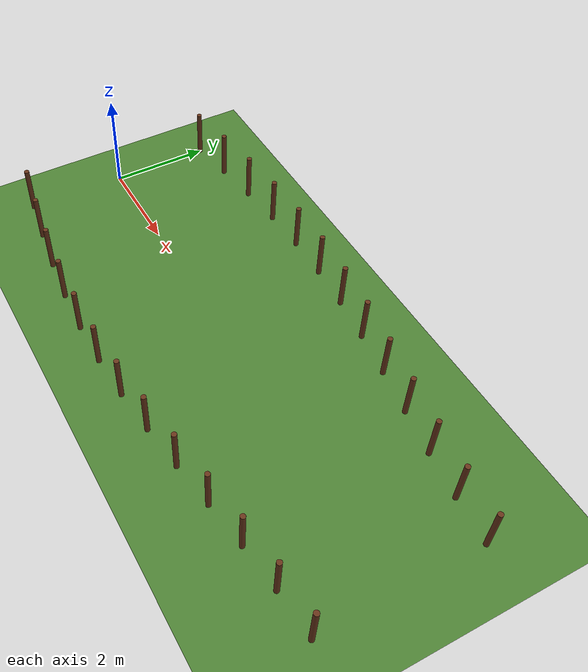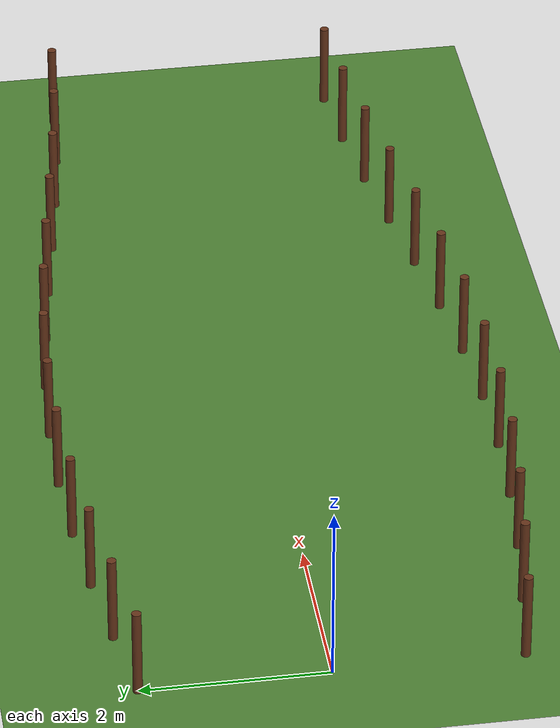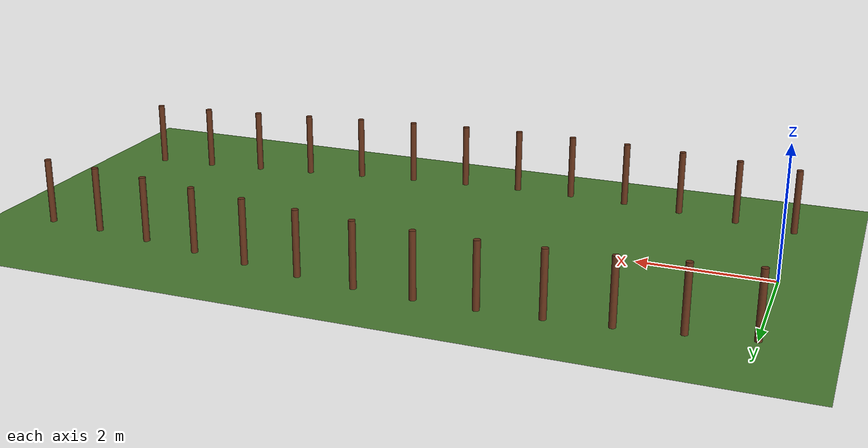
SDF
<sdf version="1.6">
 <world name="vineyard_variable">
  <model name="ground_plane">
   <static>true</static>
   <link name="link">
    <collision name="collision">
     <geometry><plane><normal>0 0 1</normal><size>100 100</size></plane></geometry>
     <surface><friction><ode><mu>100</mu><mu2>50</mu2></ode></friction></surface>
    </collision>
    <visual name="visual">
     <cast_shadows>false</cast_shadows>
     <geometry><plane><normal>0 0 1</normal><size>100 100</size></plane></geometry>
     <material><ambient>0.3 0.5 0.2 1</ambient><diffuse>0.3 0.5 0.2 1</diffuse></material>
    </visual>
   </link>
  </model>
  <model name="vine_0">
   <static>true</static>
   <pose>0.0 -2.0 0.5 0 0 0</pose>
   <link name="link">
    <collision name="collision">
     <geometry><cylinder><radius>0.05</radius><length>1.0</length></cylinder></geometry>
    </collision>
    <visual name="visual">
     <geometry><cylinder><radius>0.05</radius><length>1.0</length></cylinder></geometry>
     <material><ambient>0.4 0.2 0.1 1</ambient><diffuse>0.4 0.2 0.1 1</diffuse></material>
    </visual>
   </link>
  </model>
  <model name="vine_1">
   <static>true</static>
   <pose>0.9 -2.1409096933100358 0.5 0 0 0</pose>
   <link name="link">
    <collision name="collision">
     <geometry><cylinder><radius>0.05</radius><length>1.0</length></cylinder></geometry>
    </collision>
    <visual name="visual">
     <geometry><cylinder><radius>0.05</radius><length>1.0</length></cylinder></geometry>
     <material><ambient>0.4 0.2 0.1 1</ambient><diffuse>0.4 0.2 0.1 1</diffuse></material>
    </visual>
   </link>
  </model>
  <model name="vine_2">
   <static>true</static>
   <pose>1.8 -2.2637538687885894 0.5 0 0 0</pose>
   <link name="link">
    <collision name="collision">
     <geometry><cylinder><radius>0.05</radius><length>1.0</length></cylinder></geometry>
    </collision>
    <visual name="visual">
     <geometry><cylinder><radius>0.05</radius><length>1.0</length></cylinder></geometry>
     <material><ambient>0.4 0.2 0.1 1</ambient><diffuse>0.4 0.2 0.1 1</diffuse></material>
    </visual>
   </link>
  </model>
  <model name="vine_3">
   <static>true</static>
   <pose>2.7 -2.352783122753979 0.5 0 0 0</pose>
   <link name="link">
    <collision name="collision">
     <geometry><cylinder><radius>0.05</radius><length>1.0</length></cylinder></geometry>
    </collision>
    <visual name="visual">
     <geometry><cylinder><radius>0.05</radius><length>1.0</length></cylinder></geometry>
     <material><ambient>0.4 0.2 0.1 1</ambient><diffuse>0.4 0.2 0.1 1</diffuse></material>
    </visual>
   </link>
  </model>
  <model name="vine_4">
   <static>true</static>
   <pose>3.6 -2.396583339276675 0.5 0 0 0</pose>
   <link name="link">
    <collision name="collision">
     <geometry><cylinder><radius>0.05</radius><length>1.0</length></cylinder></geometry>
    </collision>
    <visual name="visual">
     <geometry><cylinder><radius>0.05</radius><length>1.0</length></cylinder></geometry>
     <material><ambient>0.4 0.2 0.1 1</ambient><diffuse>0.4 0.2 0.1 1</diffuse></material>
    </visual>
   </link>
  </model>
  <model name="vine_5">
   <static>true</static>
   <pose>4.5 -2.389539052351278 0.5 0 0 0</pose>
   <link name="link">
    <collision name="collision">
     <geometry><cylinder><radius>0.05</radius><length>1.0</length></cylinder></geometry>
    </collision>
    <visual name="visual">
     <geometry><cylinder><radius>0.05</radius><length>1.0</length></cylinder></geometry>
     <material><ambient>0.4 0.2 0.1 1</ambient><diffuse>0.4 0.2 0.1 1</diffuse></material>
    </visual>
   </link>
  </model>
  <model name="vine_6">
   <static>true</static>
   <pose>5.4 -2.332553384311473 0.5 0 0 0</pose>
   <link name="link">
    <collision name="collision">
     <geometry><cylinder><radius>0.05</radius><length>1.0</length></cylinder></geometry>
    </collision>
    <visual name="visual">
     <geometry><cylinder><radius>0.05</radius><length>1.0</length></cylinder></geometry>
     <material><ambient>0.4 0.2 0.1 1</ambient><diffuse>0.4 0.2 0.1 1</diffuse></material>
    </visual>
   </link>
  </model>
  <model name="vine_7">
   <static>true</static>
   <pose>6.3 -2.232932259809633 0.5 0 0 0</pose>
   <link name="link">
    <collision name="collision">
     <geometry><cylinder><radius>0.05</radius><length>1.0</length></cylinder></geometry>
    </collision>
    <visual name="visual">
     <geometry><cylinder><radius>0.05</radius><length>1.0</length></cylinder></geometry>
     <material><ambient>0.4 0.2 0.1 1</ambient><diffuse>0.4 0.2 0.1 1</diffuse></material>
    </visual>
   </link>
  </model>
  <model name="vine_8">
   <static>true</static>
   <pose>7.2 -2.103447739864444 0.5 0 0 0</pose>
   <link name="link">
    <collision name="collision">
     <geometry><cylinder><radius>0.05</radius><length>1.0</length></cylinder></geometry>
    </collision>
    <visual name="visual">
     <geometry><cylinder><radius>0.05</radius><length>1.0</length></cylinder></geometry>
     <material><ambient>0.4 0.2 0.1 1</ambient><diffuse>0.4 0.2 0.1 1</diffuse></material>
    </visual>
   </link>
  </model>
  <model name="vine_9">
   <static>true</static>
   <pose>8.1 -1.9607005625019567 0.5 0 0 0</pose>
   <link name="link">
    <collision name="collision">
     <geometry><cylinder><radius>0.05</radius><length>1.0</length></cylinder></geometry>
    </collision>
    <visual name="visual">
     <geometry><cylinder><radius>0.05</radius><length>1.0</length></cylinder></geometry>
     <material><ambient>0.4 0.2 0.1 1</ambient><diffuse>0.4 0.2 0.1 1</diffuse></material>
    </visual>
   </link>
  </model>
  <model name="vine_10">
   <static>true</static>
   <pose>9.0 -1.8229918226820592 0.5 0 0 0</pose>
   <link name="link">
    <collision name="collision">
     <geometry><cylinder><radius>0.05</radius><length>1.0</length></cylinder></geometry>
    </collision>
    <visual name="visual">
     <geometry><cylinder><radius>0.05</radius><length>1.0</length></cylinder></geometry>
     <material><ambient>0.4 0.2 0.1 1</ambient><diffuse>0.4 0.2 0.1 1</diffuse></material>
    </visual>
   </link>
  </model>
  <model name="vine_11">
   <static>true</static>
   <pose>9.9 -1.70797665566428 0.5 0 0 0</pose>
   <link name="link">
    <collision name="collision">
     <geometry><cylinder><radius>0.05</radius><length>1.0</length></cylinder></geometry>
    </collision>
    <visual name="visual">
     <geometry><cylinder><radius>0.05</radius><length>1.0</length></cylinder></geometry>
     <material><ambient>0.4 0.2 0.1 1</ambient><diffuse>0.4 0.2 0.1 1</diffuse></material>
    </visual>
   </link>
  </model>
  <model name="vine_12">
   <static>true</static>
   <pose>10.8 -1.6304007365107247 0.5 0 0 0</pose>
   <link name="link">
    <collision name="collision">
     <geometry><cylinder><radius>0.05</radius><length>1.0</length></cylinder></geometry>
    </collision>
    <visual name="visual">
     <geometry><cylinder><radius>0.05</radius><length>1.0</length></cylinder></geometry>
     <material><ambient>0.4 0.2 0.1 1</ambient><diffuse>0.4 0.2 0.1 1</diffuse></material>
    </visual>
   </link>
  </model>
  <model name="vine_26">
   <static>true</static>
   <pose>0.0 2.0 0.5 0 0 0</pose>
   <link name="link">
    <collision name="collision">
     <geometry><cylinder><radius>0.05</radius><length>1.0</length></cylinder></geometry>
    </collision>
    <visual name="visual">
     <geometry><cylinder><radius>0.05</radius><length>1.0</length></cylinder></geometry>
     <material><ambient>0.4 0.2 0.1 1</ambient><diffuse>0.4 0.2 0.1 1</diffuse></material>
    </visual>
   </link>
  </model>
  <model name="vine_27">
   <static>true</static>
   <pose>0.9 2.1409096933100358 0.5 0 0 0</pose>
   <link name="link">
    <collision name="collision">
     <geometry><cylinder><radius>0.05</radius><length>1.0</length></cylinder></geometry>
    </collision>
    <visual name="visual">
     <geometry><cylinder><radius>0.05</radius><length>1.0</length></cylinder></geometry>
     <material><ambient>0.4 0.2 0.1 1</ambient><diffuse>0.4 0.2 0.1 1</diffuse></material>
    </visual>
   </link>
  </model>
  <model name="vine_28">
   <static>true</static>
   <pose>1.8 2.2637538687885894 0.5 0 0 0</pose>
   <link name="link">
    <collision name="collision">
     <geometry><cylinder><radius>0.05</radius><length>1.0</length></cylinder></geometry>
    </collision>
    <visual name="visual">
     <geometry><cylinder><radius>0.05</radius><length>1.0</length></cylinder></geometry>
     <material><ambient>0.4 0.2 0.1 1</ambient><diffuse>0.4 0.2 0.1 1</diffuse></material>
    </visual>
   </link>
  </model>
  <model name="vine_29">
   <static>true</static>
   <pose>2.7 2.352783122753979 0.5 0 0 0</pose>
   <link name="link">
    <collision name="collision">
     <geometry><cylinder><radius>0.05</radius><length>1.0</length></cylinder></geometry>
    </collision>
    <visual name="visual">
     <geometry><cylinder><radius>0.05</radius><length>1.0</length></cylinder></geometry>
     <material><ambient>0.4 0.2 0.1 1</ambient><diffuse>0.4 0.2 0.1 1</diffuse></material>
    </visual>
   </link>
  </model>
  <model name="vine_30">
   <static>true</static>
   <pose>3.6 2.3965833392766744 0.5 0 0 0</pose>
   <link name="link">
    <collision name="collision">
     <geometry><cylinder><radius>0.05</radius><length>1.0</length></cylinder></geometry>
    </collision>
    <visual name="visual">
     <geometry><cylinder><radius>0.05</radius><length>1.0</length></cylinder></geometry>
     <material><ambient>0.4 0.2 0.1 1</ambient><diffuse>0.4 0.2 0.1 1</diffuse></material>
    </visual>
   </link>
  </model>
  <model name="vine_31">
   <static>true</static>
   <pose>4.5 2.389539052351278 0.5 0 0 0</pose>
   <link name="link">
    <collision name="collision">
     <geometry><cylinder><radius>0.05</radius><length>1.0</length></cylinder></geometry>
    </collision>
    <visual name="visual">
     <geometry><cylinder><radius>0.05</radius><length>1.0</length></cylinder></geometry>
     <material><ambient>0.4 0.2 0.1 1</ambient><diffuse>0.4 0.2 0.1 1</diffuse></material>
    </visual>
   </link>
  </model>
  <model name="vine_32">
   <static>true</static>
   <pose>5.4 2.332553384311473 0.5 0 0 0</pose>
   <link name="link">
    <collision name="collision">
     <geometry><cylinder><radius>0.05</radius><length>1.0</length></cylinder></geometry>
    </collision>
    <visual name="visual">
     <geometry><cylinder><radius>0.05</radius><length>1.0</length></cylinder></geometry>
     <material><ambient>0.4 0.2 0.1 1</ambient><diffuse>0.4 0.2 0.1 1</diffuse></material>
    </visual>
   </link>
  </model>
  <model name="vine_33">
   <static>true</static>
   <pose>6.3 2.232932259809633 0.5 0 0 0</pose>
   <link name="link">
    <collision name="collision">
     <geometry><cylinder><radius>0.05</radius><length>1.0</length></cylinder></geometry>
    </collision>
    <visual name="visual">
     <geometry><cylinder><radius>0.05</radius><length>1.0</length></cylinder></geometry>
     <material><ambient>0.4 0.2 0.1 1</ambient><diffuse>0.4 0.2 0.1 1</diffuse></material>
    </visual>
   </link>
  </model>
  <model name="vine_34">
   <static>true</static>
   <pose>7.2 2.103447739864444 0.5 0 0 0</pose>
   <link name="link">
    <collision name="collision">
     <geometry><cylinder><radius>0.05</radius><length>1.0</length></cylinder></geometry>
    </collision>
    <visual name="visual">
     <geometry><cylinder><radius>0.05</radius><length>1.0</length></cylinder></geometry>
     <material><ambient>0.4 0.2 0.1 1</ambient><diffuse>0.4 0.2 0.1 1</diffuse></material>
    </visual>
   </link>
  </model>
  <model name="vine_35">
   <static>true</static>
   <pose>8.1 1.9607005625019565 0.5 0 0 0</pose>
   <link name="link">
    <collision name="collision">
     <geometry><cylinder><radius>0.05</radius><length>1.0</length></cylinder></geometry>
    </collision>
    <visual name="visual">
     <geometry><cylinder><radius>0.05</radius><length>1.0</length></cylinder></geometry>
     <material><ambient>0.4 0.2 0.1 1</ambient><diffuse>0.4 0.2 0.1 1</diffuse></material>
    </visual>
   </link>
  </model>
  <model name="vine_36">
   <static>true</static>
   <pose>9.0 1.822991822682059 0.5 0 0 0</pose>
   <link name="link">
    <collision name="collision">
     <geometry><cylinder><radius>0.05</radius><length>1.0</length></cylinder></geometry>
    </collision>
    <visual name="visual">
     <geometry><cylinder><radius>0.05</radius><length>1.0</length></cylinder></geometry>
     <material><ambient>0.4 0.2 0.1 1</ambient><diffuse>0.4 0.2 0.1 1</diffuse></material>
    </visual>
   </link>
  </model>
  <model name="vine_37">
   <static>true</static>
   <pose>9.9 1.7079766556642801 0.5 0 0 0</pose>
   <link name="link">
    <collision name="collision">
     <geometry><cylinder><radius>0.05</radius><length>1.0</length></cylinder></geometry>
    </collision>
    <visual name="visual">
     <geometry><cylinder><radius>0.05</radius><length>1.0</length></cylinder></geometry>
     <material><ambient>0.4 0.2 0.1 1</ambient><diffuse>0.4 0.2 0.1 1</diffuse></material>
    </visual>
   </link>
  </model>
  <model name="vine_38">
   <static>true</static>
   <pose>10.8 1.6304007365107247 0.5 0 0 0</pose>
   <link name="link">
    <collision name="collision">
     <geometry><cylinder><radius>0.05</radius><length>1.0</length></cylinder></geometry>
    </collision>
    <visual name="visual">
     <geometry><cylinder><radius>0.05</radius><length>1.0</length></cylinder></geometry>
     <material><ambient>0.4 0.2 0.1 1</ambient><diffuse>0.4 0.2 0.1 1</diffuse></material>
    </visual>
   </link>
  </model>
 </world>
</sdf>
